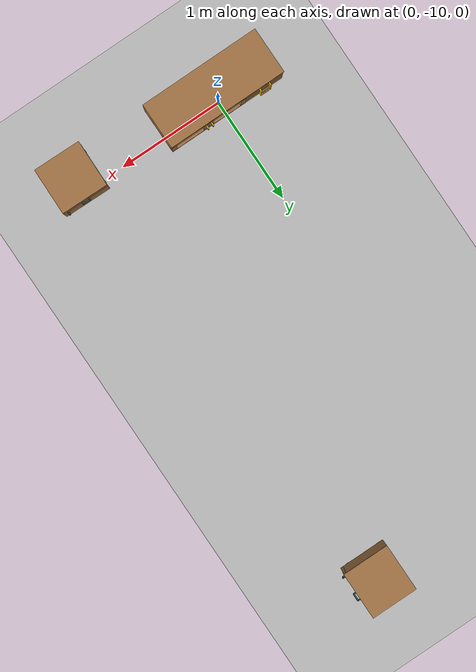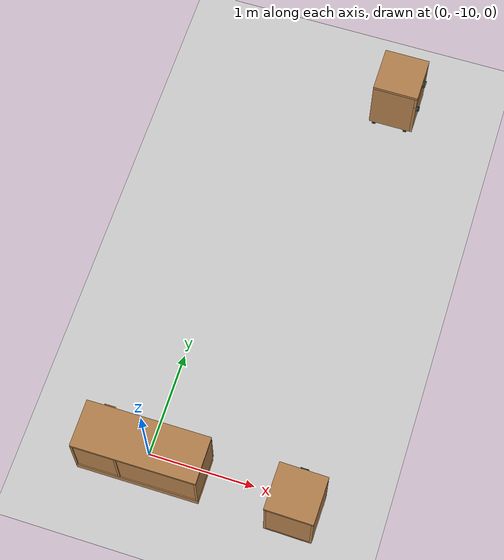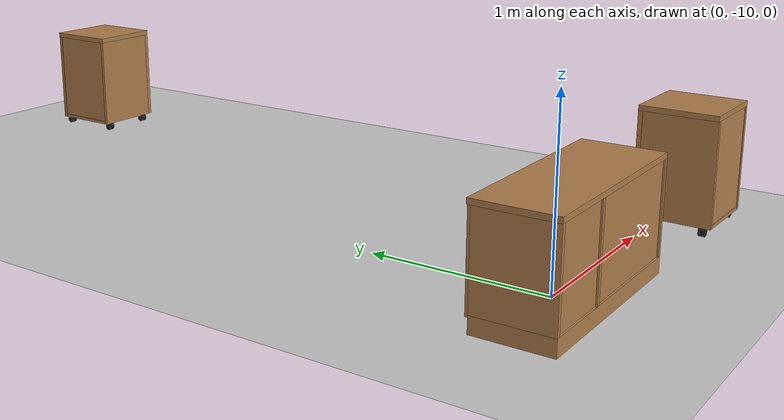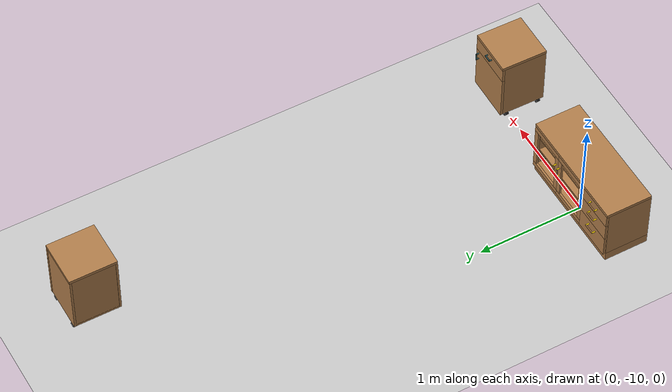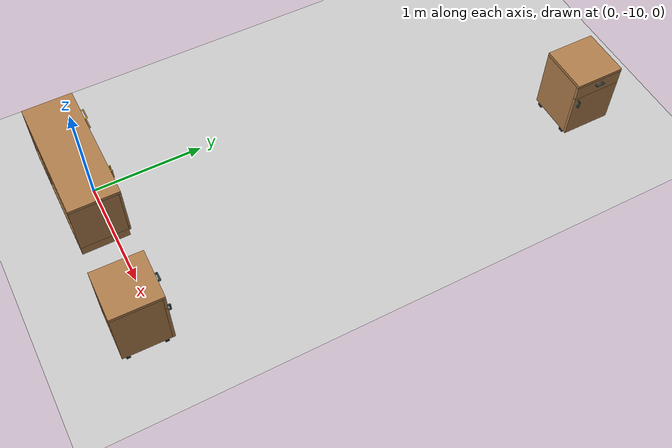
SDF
<sdf version="1.6">
 <world name="default">
  <model name="ground_plane">
   <static>1</static>
   <link name="link">
    <collision name="collision">
     <geometry><plane><normal>0 0 1</normal><size>100 100</size></plane></geometry>
     <surface><friction><ode><mu>100</mu><mu2>50</mu2></ode></friction></surface>
    </collision>
    <visual name="visual">
     <cast_shadows>0</cast_shadows>
     <geometry><plane><normal>0 0 1</normal><size>100 100</size></plane></geometry>
     <material>
      <script><uri>file://media/materials/scripts/gazebo.material</uri><name>Gazebo/Grey</name></script>
     </material>
    </visual>
   </link>
  </model>
  <model name="living_sideboard">
   <link name="link">
    <inertial>
     <mass>10</mass>
     <inertia><ixx>1</ixx><ixy>0</ixy><ixz>0</ixz><iyy>1</iyy><iyz>0</iyz><izz>1</izz></inertia>
    </inertial>
    <visual name="left_board">
     <pose>-0.23 0.01 0.3375 0 -0 0</pose>
     <geometry><box><size>0.42 0.02 0.495</size></box></geometry>
     <material>
      <script><uri>model://base_materials/wood/scripts/wood.material</uri><name>base_materials/wood</name></script>
     </material>
    </visual>
    <collision name="collision_left_board">
     <pose>-0.23 0.01 0.3375 0 -0 0</pose>
     <geometry><box><size>0.42 0.02 0.495</size></box></geometry>
    </collision>
    <visual name="back_board">
     <pose>-0.42 0.575 0.2925 0 -0 0</pose>
     <geometry><box><size>0.02 1.11 0.585</size></box></geometry>
     <material>
      <script><uri>model://base_materials/wood/scripts/wood.material</uri><name>base_materials/wood</name></script>
     </material>
    </visual>
    <collision name="collision_back_board">
     <pose>-0.42 0.575 0.2925 0 -0 0</pose>
     <geometry><box><size>0.02 1.11 0.585</size></box></geometry>
    </collision>
    <visual name="right_board">
     <pose>-0.23 1.14 0.3375 0 -0 0</pose>
     <geometry><box><size>0.42 0.02 0.495</size></box></geometry>
     <material>
      <script><uri>model://base_materials/wood/scripts/wood.material</uri><name>base_materials/wood</name></script>
     </material>
    </visual>
    <collision name="collision_right_board">
     <pose>-0.23 1.14 0.3375 0 -0 0</pose>
     <geometry><box><size>0.42 0.02 0.495</size></box></geometry>
    </collision>
    <visual name="center_vertical_board1">
     <pose>-0.23 0.74 0.3375 0 -0 0</pose>
     <geometry><box><size>0.42 0.02 0.495</size></box></geometry>
     <material>
      <script><uri>model://base_materials/wood/scripts/wood.material</uri><name>base_materials/wood</name></script>
     </material>
    </visual>
    <collision name="collision_center_vertical_board1">
     <pose>-0.23 0.74 0.3375 0 -0 0</pose>
     <geometry><box><size>0.42 0.02 0.495</size></box></geometry>
    </collision>
    <visual name="top_board">
     <pose>-0.22 0.575 0.6 0 -0 0</pose>
     <geometry><box><size>0.44 1.15 0.03</size></box></geometry>
     <material>
      <script><uri>model://base_materials/wood/scripts/wood.material</uri><name>base_materials/wood</name></script>
     </material>
    </visual>
    <collision name="collision_top_board">
     <pose>-0.22 0.575 0.6 0 -0 0</pose>
     <geometry><box><size>0.44 1.15 0.03</size></box></geometry>
    </collision>
    <visual name="bottom_board">
     <pose>-0.23 0.575 0.045 0 -0 0</pose>
     <geometry><box><size>0.42 1.15 0.09</size></box></geometry>
     <material>
      <script><uri>model://base_materials/wood/scripts/wood.material</uri><name>base_materials/wood</name></script>
     </material>
    </visual>
    <collision name="collision_bottom_board">
     <pose>-0.23 0.575 0.045 0 -0 0</pose>
     <geometry><box><size>0.42 1.15 0.09</size></box></geometry>
    </collision>
    <visual name="1st_shelf">
     <pose>-0.225 0.37 0.259 0 -0 0</pose>
     <geometry><box><size>0.36 0.72 0.018</size></box></geometry>
     <material>
      <script><uri>model://base_materials/wood/scripts/wood.material</uri><name>base_materials/wood</name></script>
     </material>
    </visual>
    <collision name="collision_1st_shelf">
     <pose>-0.225 0.37 0.259 0 -0 0</pose>
     <geometry><box><size>0.36 0.72 0.018</size></box></geometry>
    </collision>
    <visual name="2nd_shelf">
     <pose>-0.225 0.37 0.407 0 -0 0</pose>
     <geometry><box><size>0.36 0.72 0.018</size></box></geometry>
     <material>
      <script><uri>model://base_materials/wood/scripts/wood.material</uri><name>base_materials/wood</name></script>
     </material>
    </visual>
    <collision name="collision_2nd_shelf">
     <pose>-0.225 0.37 0.407 0 -0 0</pose>
     <geometry><box><size>0.36 0.72 0.018</size></box></geometry>
    </collision>
    <visual name="1st_drawer">
     <pose>-0.2025 0.95 0.52 0 -0 0</pose>
     <geometry><box><size>0.405 0.38 0.13</size></box></geometry>
     <material>
      <script><uri>model://base_materials/wood/scripts/wood.material</uri><name>base_materials/wood</name></script>
     </material>
    </visual>
    <collision name="collision_1st_drawer">
     <pose>-0.2025 0.95 0.52 0 -0 0</pose>
     <geometry><box><size>0.405 0.38 0.13</size></box></geometry>
    </collision>
    <visual name="1st_drawer_handle_l1">
     <pose>0.015 0.9015 0.535 3.14159 1.57079 3.14159</pose>
     <geometry><cylinder><radius>0.006</radius><length>0.03</length></cylinder></geometry>
     <material>
      <ambient>1 0.84314 0 1</ambient>
      <diffuse>1 0.84314 0 1</diffuse>
      <specular>0.1 0.1 0.1 1</specular>
     </material>
    </visual>
    <collision name="collision_1st_drawer_handle_l1">
     <pose>0.015 0.9015 0.535 3.14159 1.57079 3.14159</pose>
     <geometry><cylinder><radius>0.006</radius><length>0.03</length></cylinder></geometry>
    </collision>
    <visual name="1st_drawer_handle_l2">
     <pose>0.03 0.9015 0.535 0 -0 0</pose>
     <geometry><sphere><radius>0.006</radius></sphere></geometry>
     <material>
      <ambient>1 0.84314 0 1</ambient>
      <diffuse>1 0.84314 0 1</diffuse>
      <specular>0.1 0.1 0.1 1</specular>
     </material>
    </visual>
    <collision name="collision_1st_drawer_handle_l2">
     <pose>0.03 0.9015 0.535 0 -0 0</pose>
     <geometry><sphere><radius>0.006</radius></sphere></geometry>
    </collision>
    <visual name="1st_drawer_handle_r1">
     <pose>0.015 0.9985 0.535 3.14159 1.57079 3.14159</pose>
     <geometry><cylinder><radius>0.006</radius><length>0.03</length></cylinder></geometry>
     <material>
      <ambient>1 0.84314 0 1</ambient>
      <diffuse>1 0.84314 0 1</diffuse>
      <specular>0.1 0.1 0.1 1</specular>
     </material>
    </visual>
    <collision name="collision_1st_drawer_handle_r1">
     <pose>0.015 0.9985 0.535 3.14159 1.57079 3.14159</pose>
     <geometry><cylinder><radius>0.006</radius><length>0.03</length></cylinder></geometry>
    </collision>
    <visual name="1st_drawer_handle_r2">
     <pose>0.03 0.9985 0.535 0 -0 0</pose>
     <geometry><sphere><radius>0.006</radius></sphere></geometry>
     <material>
      <ambient>1 0.84314 0 1</ambient>
      <diffuse>1 0.84314 0 1</diffuse>
      <specular>0.1 0.1 0.1 1</specular>
     </material>
    </visual>
    <collision name="collision_1st_drawer_handle_r2">
     <pose>0.03 0.9985 0.535 0 -0 0</pose>
     <geometry><sphere><radius>0.006</radius></sphere></geometry>
    </collision>
    <visual name="1st_drawer_handle_center">
     <pose>0.03 0.95 0.535 1.5708 -0 0</pose>
     <geometry><cylinder><radius>0.006</radius><length>0.097</length></cylinder></geometry>
     <material>
      <script><uri>model://base_materials/wood/scripts/wood.material</uri><name>base_materials/wood</name></script>
     </material>
    </visual>
    <collision name="collision_1st_drawer_handle_center">
     <pose>0.03 0.95 0.535 1.5708 -0 0</pose>
     <geometry><cylinder><radius>0.006</radius><length>0.097</length></cylinder></geometry>
    </collision>
    <visual name="2nd_drawer">
     <pose>-0.2025 0.95 0.37 0 -0 0</pose>
     <geometry><box><size>0.405 0.38 0.17</size></box></geometry>
     <material>
      <script><uri>model://base_materials/wood/scripts/wood.material</uri><name>base_materials/wood</name></script>
     </material>
    </visual>
    <collision name="collision_2nd_drawer">
     <pose>-0.2025 0.95 0.37 0 -0 0</pose>
     <geometry><box><size>0.405 0.38 0.17</size></box></geometry>
    </collision>
    <visual name="2nd_drawer_handle_l1">
     <pose>0.015 0.9015 0.405 3.14159 1.57079 3.14159</pose>
     <geometry><cylinder><radius>0.006</radius><length>0.03</length></cylinder></geometry>
     <material>
      <ambient>1 0.84314 0 1</ambient>
      <diffuse>1 0.84314 0 1</diffuse>
      <specular>0.1 0.1 0.1 1</specular>
     </material>
    </visual>
    <collision name="collision_2nd_drawer_handle_l1">
     <pose>0.015 0.9015 0.405 3.14159 1.57079 3.14159</pose>
     <geometry><cylinder><radius>0.006</radius><length>0.03</length></cylinder></geometry>
    </collision>
    <visual name="2nd_drawer_handle_l2">
     <pose>0.03 0.9015 0.405 0 -0 0</pose>
     <geometry><sphere><radius>0.006</radius></sphere></geometry>
     <material>
      <ambient>1 0.84314 0 1</ambient>
      <diffuse>1 0.84314 0 1</diffuse>
      <specular>0.1 0.1 0.1 1</specular>
     </material>
    </visual>
    <collision name="collision_2nd_drawer_handle_l2">
     <pose>0.03 0.9015 0.405 0 -0 0</pose>
     <geometry><sphere><radius>0.006</radius></sphere></geometry>
    </collision>
    <visual name="2nd_drawer_handle_r1">
     <pose>0.015 0.9985 0.405 3.14159 1.57079 3.14159</pose>
     <geometry><cylinder><radius>0.006</radius><length>0.03</length></cylinder></geometry>
     <material>
      <ambient>1 0.84314 0 1</ambient>
      <diffuse>1 0.84314 0 1</diffuse>
      <specular>0.1 0.1 0.1 1</specular>
     </material>
    </visual>
    <collision name="collision_2nd_drawer_handle_r1">
     <pose>0.015 0.9985 0.405 3.14159 1.57079 3.14159</pose>
     <geometry><cylinder><radius>0.006</radius><length>0.03</length></cylinder></geometry>
    </collision>
    <visual name="2nd_drawer_handle_r2">
     <pose>0.03 0.9985 0.405 0 -0 0</pose>
     <geometry><sphere><radius>0.006</radius></sphere></geometry>
     <material>
      <ambient>1 0.84314 0 1</ambient>
      <diffuse>1 0.84314 0 1</diffuse>
      <specular>0.1 0.1 0.1 1</specular>
     </material>
    </visual>
    <collision name="collision_2nd_drawer_handle_r2">
     <pose>0.03 0.9985 0.405 0 -0 0</pose>
     <geometry><sphere><radius>0.006</radius></sphere></geometry>
    </collision>
    <visual name="2nd_drawer_handle_center">
     <pose>0.03 0.95 0.405 1.5708 -0 0</pose>
     <geometry><cylinder><radius>0.006</radius><length>0.097</length></cylinder></geometry>
     <material>
      <script><uri>model://base_materials/wood/scripts/wood.material</uri><name>base_materials/wood</name></script>
     </material>
    </visual>
    <collision name="collision_2nd_drawer_handle_center">
     <pose>0.03 0.95 0.405 1.5708 -0 0</pose>
     <geometry><cylinder><radius>0.006</radius><length>0.097</length></cylinder></geometry>
    </collision>
    <visual name="3rd_drawer">
     <pose>-0.2025 0.95 0.18 0 -0 0</pose>
     <geometry><box><size>0.405 0.38 0.21</size></box></geometry>
     <material>
      <script><uri>model://base_materials/wood/scripts/wood.material</uri><name>base_materials/wood</name></script>
     </material>
    </visual>
    <collision name="collision_3rd_drawer">
     <pose>-0.2025 0.95 0.18 0 -0 0</pose>
     <geometry><box><size>0.405 0.38 0.21</size></box></geometry>
    </collision>
    <visual name="3rd_drawer_handle_l1">
     <pose>0.015 0.9015 0.235 3.14159 1.57079 3.14159</pose>
     <geometry><cylinder><radius>0.006</radius><length>0.03</length></cylinder></geometry>
     <material>
      <ambient>1 0.84314 0 1</ambient>
      <diffuse>1 0.84314 0 1</diffuse>
      <specular>0.1 0.1 0.1 1</specular>
     </material>
    </visual>
    <collision name="collision_3rd_drawer_handle_l1">
     <pose>0.015 0.9015 0.235 3.14159 1.57079 3.14159</pose>
     <geometry><cylinder><radius>0.006</radius><length>0.03</length></cylinder></geometry>
    </collision>
    <visual name="3rd_drawer_handle_l2">
     <pose>0.03 0.9015 0.235 0 -0 0</pose>
     <geometry><sphere><radius>0.006</radius></sphere></geometry>
     <material>
      <ambient>1 0.84314 0 1</ambient>
      <diffuse>1 0.84314 0 1</diffuse>
      <specular>0.1 0.1 0.1 1</specular>
     </material>
    </visual>
    <collision name="collision_3rd_drawer_handle_l2">
     <pose>0.03 0.9015 0.235 0 -0 0</pose>
     <geometry><sphere><radius>0.006</radius></sphere></geometry>
    </collision>
    <visual name="3rd_drawer_handle_r1">
     <pose>0.015 0.9985 0.235 3.14159 1.57079 3.14159</pose>
     <geometry><cylinder><radius>0.006</radius><length>0.03</length></cylinder></geometry>
     <material>
      <ambient>1 0.84314 0 1</ambient>
      <diffuse>1 0.84314 0 1</diffuse>
      <specular>0.1 0.1 0.1 1</specular>
     </material>
    </visual>
    <collision name="collision_3rd_drawer_handle_r1">
     <pose>0.015 0.9985 0.235 3.14159 1.57079 3.14159</pose>
     <geometry><cylinder><radius>0.006</radius><length>0.03</length></cylinder></geometry>
    </collision>
    <visual name="3rd_drawer_handle_r2">
     <pose>0.03 0.9985 0.235 0 -0 0</pose>
     <geometry><sphere><radius>0.006</radius></sphere></geometry>
     <material>
      <ambient>1 0.84314 0 1</ambient>
      <diffuse>1 0.84314 0 1</diffuse>
      <specular>0.1 0.1 0.1 1</specular>
     </material>
    </visual>
    <collision name="collision_3rd_drawer_handle_r2">
     <pose>0.03 0.9985 0.235 0 -0 0</pose>
     <geometry><sphere><radius>0.006</radius></sphere></geometry>
    </collision>
    <visual name="3rd_drawer_handle_center">
     <pose>0.03 0.95 0.235 1.5708 -0 0</pose>
     <geometry><cylinder><radius>0.006</radius><length>0.097</length></cylinder></geometry>
     <material>
      <script><uri>model://base_materials/wood/scripts/wood.material</uri><name>base_materials/wood</name></script>
     </material>
    </visual>
    <collision name="collision_3rd_drawer_handle_center">
     <pose>0.03 0.95 0.235 1.5708 -0 0</pose>
     <geometry><cylinder><radius>0.006</radius><length>0.097</length></cylinder></geometry>
    </collision>
    <visual name="left_door_left_frame">
     <pose>-0.01 0.025 0.3275 0 -0 0</pose>
     <geometry><box><size>0.02 0.05 0.405</size></box></geometry>
     <material>
      <script><uri>model://base_materials/wood/scripts/wood.material</uri><name>base_materials/wood</name></script>
     </material>
    </visual>
    <collision name="collision_left_door_left_frame">
     <pose>-0.01 0.025 0.3275 0 -0 0</pose>
     <geometry><box><size>0.02 0.05 0.405</size></box></geometry>
    </collision>
    <visual name="left_door_right_frame">
     <pose>-0.01 0.355 0.3275 0 -0 0</pose>
     <geometry><box><size>0.02 0.05 0.405</size></box></geometry>
     <material>
      <script><uri>model://base_materials/wood/scripts/wood.material</uri><name>base_materials/wood</name></script>
     </material>
    </visual>
    <collision name="collision_left_door_right_frame">
     <pose>-0.01 0.355 0.3275 0 -0 0</pose>
     <geometry><box><size>0.02 0.05 0.405</size></box></geometry>
    </collision>
    <visual name="left_door_handle_top1">
     <pose>0.015 0.355 0.4475 3.14159 1.57079 3.14159</pose>
     <geometry><cylinder><radius>0.006</radius><length>0.03</length></cylinder></geometry>
     <material>
      <ambient>1 0.84314 0 1</ambient>
      <diffuse>1 0.84314 0 1</diffuse>
      <specular>0.1 0.1 0.1 1</specular>
     </material>
    </visual>
    <collision name="collision_left_door_handle_top1">
     <pose>0.015 0.355 0.4475 3.14159 1.57079 3.14159</pose>
     <geometry><cylinder><radius>0.006</radius><length>0.03</length></cylinder></geometry>
    </collision>
    <visual name="left_door_handle_top2">
     <pose>0.03 0.355 0.4475 0 -0 0</pose>
     <geometry><sphere><radius>0.006</radius></sphere></geometry>
     <material>
      <ambient>1 0.84314 0 1</ambient>
      <diffuse>1 0.84314 0 1</diffuse>
      <specular>0.1 0.1 0.1 1</specular>
     </material>
    </visual>
    <collision name="collision_left_door_handle_top2">
     <pose>0.03 0.355 0.4475 0 -0 0</pose>
     <geometry><sphere><radius>0.006</radius></sphere></geometry>
    </collision>
    <visual name="left_door_handle_bottom1">
     <pose>0.015 0.355 0.3505 3.14159 1.57079 3.14159</pose>
     <geometry><cylinder><radius>0.006</radius><length>0.03</length></cylinder></geometry>
     <material>
      <ambient>1 0.84314 0 1</ambient>
      <diffuse>1 0.84314 0 1</diffuse>
      <specular>0.1 0.1 0.1 1</specular>
     </material>
    </visual>
    <collision name="collision_left_door_handle_bottom1">
     <pose>0.015 0.355 0.3505 3.14159 1.57079 3.14159</pose>
     <geometry><cylinder><radius>0.006</radius><length>0.03</length></cylinder></geometry>
    </collision>
    <visual name="left_door_handle_bottom2">
     <pose>0.03 0.355 0.3505 0 -0 0</pose>
     <geometry><sphere><radius>0.006</radius></sphere></geometry>
     <material>
      <ambient>1 0.84314 0 1</ambient>
      <diffuse>1 0.84314 0 1</diffuse>
      <specular>0.1 0.1 0.1 1</specular>
     </material>
    </visual>
    <collision name="collision_left_door_handle_bottom2">
     <pose>0.03 0.355 0.3505 0 -0 0</pose>
     <geometry><sphere><radius>0.006</radius></sphere></geometry>
    </collision>
    <visual name="left_door_handle_center">
     <pose>0.03 0.355 0.399 0 -0 0</pose>
     <geometry><cylinder><radius>0.006</radius><length>0.097</length></cylinder></geometry>
     <material>
      <script><uri>model://base_materials/wood/scripts/wood.material</uri><name>base_materials/wood</name></script>
     </material>
    </visual>
    <collision name="collision_left_door_handle_center">
     <pose>0.03 0.355 0.399 0 -0 0</pose>
     <geometry><cylinder><radius>0.006</radius><length>0.097</length></cylinder></geometry>
    </collision>
    <visual name="left_door_top_frame">
     <pose>-0.01 0.19 0.5575 0 -0 0</pose>
     <geometry><box><size>0.02 0.38 0.055</size></box></geometry>
     <material>
      <script><uri>model://base_materials/wood/scripts/wood.material</uri><name>base_materials/wood</name></script>
     </material>
    </visual>
    <collision name="collision_left_door_top_frame">
     <pose>-0.01 0.19 0.5575 0 -0 0</pose>
     <geometry><box><size>0.02 0.38 0.055</size></box></geometry>
    </collision>
    <visual name="left_door_bottom_frame">
     <pose>-0.01 0.19 0.1 0 -0 0</pose>
     <geometry><box><size>0.02 0.38 0.05</size></box></geometry>
     <material>
      <script><uri>model://base_materials/wood/scripts/wood.material</uri><name>base_materials/wood</name></script>
     </material>
    </visual>
    <collision name="collision_left_door_bottom_frame">
     <pose>-0.01 0.19 0.1 0 -0 0</pose>
     <geometry><box><size>0.02 0.38 0.05</size></box></geometry>
    </collision>
    <visual name="right_door_left_frame">
     <pose>-0.01 0.405 0.3275 0 -0 0</pose>
     <geometry><box><size>0.02 0.05 0.405</size></box></geometry>
     <material>
      <script><uri>model://base_materials/wood/scripts/wood.material</uri><name>base_materials/wood</name></script>
     </material>
    </visual>
    <collision name="collision_right_door_left_frame">
     <pose>-0.01 0.405 0.3275 0 -0 0</pose>
     <geometry><box><size>0.02 0.05 0.405</size></box></geometry>
    </collision>
    <visual name="right_door_right_frame">
     <pose>-0.01 0.735 0.3275 0 -0 0</pose>
     <geometry><box><size>0.02 0.05 0.405</size></box></geometry>
     <material>
      <script><uri>model://base_materials/wood/scripts/wood.material</uri><name>base_materials/wood</name></script>
     </material>
    </visual>
    <collision name="collision_right_door_right_frame">
     <pose>-0.01 0.735 0.3275 0 -0 0</pose>
     <geometry><box><size>0.02 0.05 0.405</size></box></geometry>
    </collision>
    <visual name="right_door_top_frame">
     <pose>-0.01 0.57 0.5575 0 -0 0</pose>
     <geometry><box><size>0.02 0.38 0.055</size></box></geometry>
     <material>
      <script><uri>model://base_materials/wood/scripts/wood.material</uri><name>base_materials/wood</name></script>
     </material>
    </visual>
    <collision name="collision_right_door_top_frame">
     <pose>-0.01 0.57 0.5575 0 -0 0</pose>
     <geometry><box><size>0.02 0.38 0.055</size></box></geometry>
    </collision>
    <visual name="right_door_bottom_frame">
     <pose>-0.01 0.57 0.1 0 -0 0</pose>
     <geometry><box><size>0.02 0.38 0.05</size></box></geometry>
     <material>
      <script><uri>model://base_materials/wood/scripts/wood.material</uri><name>base_materials/wood</name></script>
     </material>
    </visual>
    <collision name="collision_right_door_bottom_frame">
     <pose>-0.01 0.57 0.1 0 -0 0</pose>
     <geometry><box><size>0.02 0.38 0.05</size></box></geometry>
    </collision>
    <visual name="right_door_handle_top1">
     <pose>0.015 0.405 0.4475 3.14159 1.57079 3.14159</pose>
     <geometry><cylinder><radius>0.006</radius><length>0.03</length></cylinder></geometry>
     <material>
      <ambient>1 0.84314 0 1</ambient>
      <diffuse>1 0.84314 0 1</diffuse>
      <specular>0.1 0.1 0.1 1</specular>
     </material>
    </visual>
    <collision name="collision_right_door_handle_top1">
     <pose>0.015 0.405 0.4475 3.14159 1.57079 3.14159</pose>
     <geometry><cylinder><radius>0.006</radius><length>0.03</length></cylinder></geometry>
    </collision>
    <visual name="right_door_handle_top2">
     <pose>0.03 0.405 0.4475 0 -0 0</pose>
     <geometry><sphere><radius>0.006</radius></sphere></geometry>
     <material>
      <ambient>1 0.84314 0 1</ambient>
      <diffuse>1 0.84314 0 1</diffuse>
      <specular>0.1 0.1 0.1 1</specular>
     </material>
    </visual>
    <collision name="collision_right_door_handle_top2">
     <pose>0.03 0.405 0.4475 0 -0 0</pose>
     <geometry><sphere><radius>0.006</radius></sphere></geometry>
    </collision>
    <visual name="right_door_handle_bottom1">
     <pose>0.015 0.405 0.3505 3.14159 1.57079 3.14159</pose>
     <geometry><cylinder><radius>0.006</radius><length>0.03</length></cylinder></geometry>
     <material>
      <ambient>1 0.84314 0 1</ambient>
      <diffuse>1 0.84314 0 1</diffuse>
      <specular>0.1 0.1 0.1 1</specular>
     </material>
    </visual>
    <collision name="collision_right_door_handle_bottom1">
     <pose>0.015 0.405 0.3505 3.14159 1.57079 3.14159</pose>
     <geometry><cylinder><radius>0.006</radius><length>0.03</length></cylinder></geometry>
    </collision>
    <visual name="right_door_handle_bottom2">
     <pose>0.03 0.405 0.3505 0 -0 0</pose>
     <geometry><sphere><radius>0.006</radius></sphere></geometry>
     <material>
      <ambient>1 0.84314 0 1</ambient>
      <diffuse>1 0.84314 0 1</diffuse>
      <specular>0.1 0.1 0.1 1</specular>
     </material>
    </visual>
    <collision name="collision_right_door_handle_bottom2">
     <pose>0.03 0.405 0.3505 0 -0 0</pose>
     <geometry><sphere><radius>0.006</radius></sphere></geometry>
    </collision>
    <visual name="right_door_handle_center">
     <pose>0.03 0.405 0.399 0 -0 0</pose>
     <geometry><cylinder><radius>0.006</radius><length>0.097</length></cylinder></geometry>
     <material>
      <script><uri>model://base_materials/wood/scripts/wood.material</uri><name>base_materials/wood</name></script>
     </material>
    </visual>
    <collision name="collision_right_door_handle_center">
     <pose>0.03 0.4 0.399 0 -0 0</pose>
     <geometry><cylinder><radius>0.006</radius><length>0.097</length></cylinder></geometry>
    </collision>
    <velocity_decay><linear>0</linear><angular>0</angular></velocity_decay>
   </link>
   <static>1</static>
   <pose>0.568188 -9.86074 0 0 -0 1.5725</pose>
  </model>
  <model name="wagon_0">
   <link name="link">
    <inertial>
     <mass>10</mass>
     <inertia><ixx>1</ixx><ixy>0</ixy><ixz>0</ixz><iyy>1</iyy><iyz>0</iyz><izz>1</izz></inertia>
    </inertial>
    <visual name="left_board">
     <pose>-0.2325 0.01 0.345 0 -0 0</pose>
     <geometry><box><size>0.415 0.02 0.59</size></box></geometry>
     <material>
      <script><uri>model://base_materials/wood/scripts/wood.material</uri><name>base_materials/wood</name></script>
     </material>
    </visual>
    <collision name="collision_left_board">
     <pose>-0.2325 0.01 0.345 0 -0 0</pose>
     <geometry><box><size>0.415 0.02 0.59</size></box></geometry>
    </collision>
    <visual name="right_board">
     <pose>-0.2325 0.4325 0.345 0 -0 0</pose>
     <geometry><box><size>0.415 0.02 0.59</size></box></geometry>
     <material>
      <script><uri>model://base_materials/wood/scripts/wood.material</uri><name>base_materials/wood</name></script>
     </material>
    </visual>
    <collision name="collision_right_board">
     <pose>-0.2325 0.4325 0.345 0 -0 0</pose>
     <geometry><box><size>0.415 0.02 0.59</size></box></geometry>
    </collision>
    <visual name="top_board">
     <pose>-0.22 0.2225 0.655 0 -0 0</pose>
     <geometry><box><size>0.44 0.445 0.03</size></box></geometry>
     <material>
      <script><uri>model://base_materials/wood/scripts/wood.material</uri><name>base_materials/wood</name></script>
     </material>
    </visual>
    <collision name="collision_top_board">
     <pose>-0.22 0.2225 0.655 0 -0 0</pose>
     <geometry><box><size>0.44 0.445 0.03</size></box></geometry>
    </collision>
    <visual name="back_board">
     <pose>-0.425 0.2225 0.345 0 -0 0</pose>
     <geometry><box><size>0.02 0.405 0.59</size></box></geometry>
     <material>
      <script><uri>model://base_materials/wood/scripts/wood.material</uri><name>base_materials/wood</name></script>
     </material>
    </visual>
    <collision name="collision_back_board">
     <pose>-0.425 0.2225 0.345 0 -0 0</pose>
     <geometry><box><size>0.02 0.405 0.59</size></box></geometry>
    </collision>
    <visual name="bottom_board">
     <pose>-0.2325 0.2225 0.06 0 -0 0</pose>
     <geometry><box><size>0.415 0.405 0.02</size></box></geometry>
     <material>
      <script><uri>model://base_materials/wood/scripts/wood.material</uri><name>base_materials/wood</name></script>
     </material>
    </visual>
    <collision name="collision_bottom_board">
     <pose>-0.2325 0.2225 0.06 0 -0 0</pose>
     <geometry><box><size>0.415 0.405 0.02</size></box></geometry>
    </collision>
    <visual name="1st_drawer">
     <pose>-0.0125 0.2225 0.57 0 -0 0</pose>
     <geometry><box><size>0.025 0.445 0.14</size></box></geometry>
     <material>
      <script><uri>model://base_materials/wood/scripts/wood.material</uri><name>base_materials/wood</name></script>
     </material>
    </visual>
    <collision name="collision_1st_drawer">
     <pose>-0.0125 0.2225 0.57 0 -0 0</pose>
     <geometry><box><size>0.025 0.445 0.14</size></box></geometry>
    </collision>
    <visual name="1st_drawer_handle_l1">
     <pose>0.0115 0.1895 0.6 3.14159 1.57079 3.14159</pose>
     <geometry><cylinder><radius>0.007</radius><length>0.023</length></cylinder></geometry>
     <material>
      <ambient>0.18431 0.3098 0.3098 1</ambient>
      <diffuse>0.18431 0.3098 0.3098 1</diffuse>
      <specular>0.1 0.1 0.1 1</specular>
     </material>
    </visual>
    <collision name="collision_1st_drawer_handle_l1">
     <pose>0.0115 0.1895 0.6 3.14159 1.57079 3.14159</pose>
     <geometry><cylinder><radius>0.007</radius><length>0.023</length></cylinder></geometry>
    </collision>
    <visual name="1st_drawer_handle_l2">
     <pose>0.023 0.1895 0.6 0 -0 0</pose>
     <geometry><sphere><radius>0.007</radius></sphere></geometry>
     <material>
      <ambient>0.18431 0.3098 0.3098 1</ambient>
      <diffuse>0.18431 0.3098 0.3098 1</diffuse>
      <specular>0.1 0.1 0.1 1</specular>
     </material>
    </visual>
    <collision name="collision_1st_drawer_handle_l2">
     <pose>0.023 0.1895 0.6 0 -0 0</pose>
     <geometry><sphere><radius>0.007</radius></sphere></geometry>
    </collision>
    <visual name="1st_drawer_handle_r1">
     <pose>0.0115 0.2555 0.6 3.14159 1.57079 3.14159</pose>
     <geometry><cylinder><radius>0.007</radius><length>0.023</length></cylinder></geometry>
     <material>
      <ambient>0.18431 0.3098 0.3098 1</ambient>
      <diffuse>0.18431 0.3098 0.3098 1</diffuse>
      <specular>0.1 0.1 0.1 1</specular>
     </material>
    </visual>
    <collision name="collision_1st_drawer_handle_r1">
     <pose>0.0115 0.2555 0.6 3.14159 1.57079 3.14159</pose>
     <geometry><cylinder><radius>0.007</radius><length>0.023</length></cylinder></geometry>
    </collision>
    <visual name="1st_drawer_handle_r2">
     <pose>0.023 0.2555 0.6 0 -0 0</pose>
     <geometry><sphere><radius>0.007</radius></sphere></geometry>
     <material>
      <ambient>0.18431 0.3098 0.3098 1</ambient>
      <diffuse>0.18431 0.3098 0.3098 1</diffuse>
      <specular>0.1 0.1 0.1 1</specular>
     </material>
    </visual>
    <collision name="collision_1st_drawer_handle_r2">
     <pose>0.023 0.2555 0.6 0 -0 0</pose>
     <geometry><sphere><radius>0.007</radius></sphere></geometry>
    </collision>
    <visual name="1st_drawer_handle_center">
     <pose>0.023 0.2225 0.6 1.5708 -0 0</pose>
     <geometry><cylinder><radius>0.007</radius><length>0.066</length></cylinder></geometry>
     <material>
      <ambient>0.18431 0.3098 0.3098 1</ambient>
      <diffuse>0.18431 0.3098 0.3098 1</diffuse>
      <specular>0.1 0.1 0.1 1</specular>
     </material>
    </visual>
    <collision name="collision_1st_drawer_handle_center">
     <pose>0.023 0.2225 0.6 1.5708 -0 0</pose>
     <geometry><cylinder><radius>0.007</radius><length>0.066</length></cylinder></geometry>
    </collision>
    <visual name="2nd_drawer">
     <pose>-0.0125 0.2225 0.275 0 -0 0</pose>
     <geometry><box><size>0.025 0.445 0.45</size></box></geometry>
     <material>
      <script><uri>model://base_materials/wood/scripts/wood.material</uri><name>base_materials/wood</name></script>
     </material>
    </visual>
    <collision name="collision_2nd_drawer">
     <pose>-0.0125 0.2225 0.275 0 -0 0</pose>
     <geometry><box><size>0.025 0.445 0.45</size></box></geometry>
    </collision>
    <visual name="2nd_drawer_handle_top1">
     <pose>0.0115 0.04 0.47 3.14159 1.57079 3.14159</pose>
     <geometry><cylinder><radius>0.007</radius><length>0.023</length></cylinder></geometry>
     <material>
      <ambient>0.18431 0.3098 0.3098 1</ambient>
      <diffuse>0.18431 0.3098 0.3098 1</diffuse>
      <specular>0.1 0.1 0.1 1</specular>
     </material>
    </visual>
    <collision name="collision_2nd_drawer_handle_top1">
     <pose>0.0115 0.04 0.47 3.14159 1.57079 3.14159</pose>
     <geometry><cylinder><radius>0.007</radius><length>0.023</length></cylinder></geometry>
    </collision>
    <visual name="2nd_drawer_handle_top2">
     <pose>0.023 0.04 0.47 0 -0 0</pose>
     <geometry><sphere><radius>0.007</radius></sphere></geometry>
     <material>
      <ambient>0.18431 0.3098 0.3098 1</ambient>
      <diffuse>0.18431 0.3098 0.3098 1</diffuse>
      <specular>0.1 0.1 0.1 1</specular>
     </material>
    </visual>
    <collision name="2nd_drawer_handle_top2">
     <pose>0.023 0.04 0.47 0 -0 0</pose>
     <geometry><sphere><radius>0.007</radius></sphere></geometry>
    </collision>
    <visual name="2nd_drawer_handle_bottom1">
     <pose>0.0115 0.04 0.404 3.14159 1.57079 3.14159</pose>
     <geometry><cylinder><radius>0.007</radius><length>0.023</length></cylinder></geometry>
     <material>
      <ambient>0.18431 0.3098 0.3098 1</ambient>
      <diffuse>0.18431 0.3098 0.3098 1</diffuse>
      <specular>0.1 0.1 0.1 1</specular>
     </material>
    </visual>
    <collision name="collision_2nd_drawer_handle_bottom1">
     <pose>0.0115 0.04 0.404 3.14159 1.57079 3.14159</pose>
     <geometry><cylinder><radius>0.007</radius><length>0.023</length></cylinder></geometry>
    </collision>
    <visual name="2nd_drawer_handle_bottom2">
     <pose>0.023 0.04 0.404 0 -0 0</pose>
     <geometry><sphere><radius>0.007</radius></sphere></geometry>
     <material>
      <ambient>0.18431 0.3098 0.3098 1</ambient>
      <diffuse>0.18431 0.3098 0.3098 1</diffuse>
      <specular>0.1 0.1 0.1 1</specular>
     </material>
    </visual>
    <collision name="2nd_drawer_handle_bottom2">
     <pose>0.023 0.04 0.404 0 -0 0</pose>
     <geometry><sphere><radius>0.007</radius></sphere></geometry>
    </collision>
    <visual name="2nd_drawer_handle_center">
     <pose>0.023 0.04 0.437 0 -0 0</pose>
     <geometry><cylinder><radius>0.007</radius><length>0.066</length></cylinder></geometry>
     <material>
      <ambient>0.18431 0.3098 0.3098 1</ambient>
      <diffuse>0.18431 0.3098 0.3098 1</diffuse>
      <specular>0.1 0.1 0.1 1</specular>
     </material>
    </visual>
    <collision name="collision_2nd_drawer_handle_center">
     <pose>0.023 0.04 0.437 0 -0 0</pose>
     <geometry><cylinder><radius>0.007</radius><length>0.066</length></cylinder></geometry>
    </collision>
    <visual name="left_front_caster">
     <pose>-0.07 0.025 0.025 3.14159 1.57079 3.14159</pose>
     <geometry><cylinder><radius>0.025</radius><length>0.035</length></cylinder></geometry>
     <material><script><name>Gazebo/Black</name><uri>__default__</uri></script></material>
    </visual>
    <collision name="collision_left_front_caster">
     <pose>-0.07 0.025 0.025 3.14159 1.57079 3.14159</pose>
     <geometry><cylinder><radius>0.025</radius><length>0.035</length></cylinder></geometry>
    </collision>
    <visual name="right_front_caster">
     <pose>-0.07 0.42 0.025 3.14159 1.57079 3.14159</pose>
     <geometry><cylinder><radius>0.025</radius><length>0.035</length></cylinder></geometry>
     <material><script><name>Gazebo/Black</name><uri>__default__</uri></script></material>
    </visual>
    <collision name="collision_right_front_caster">
     <pose>-0.07 0.42 0.025 3.14159 1.57079 3.14159</pose>
     <geometry><cylinder><radius>0.025</radius><length>0.035</length></cylinder></geometry>
    </collision>
    <visual name="left_back_caster">
     <pose>-0.39 0.025 0.025 3.14159 1.57079 3.14159</pose>
     <geometry><cylinder><radius>0.025</radius><length>0.035</length></cylinder></geometry>
     <material><script><name>Gazebo/Black</name><uri>__default__</uri></script></material>
    </visual>
    <collision name="collision_left_back_caster">
     <pose>-0.39 0.025 0.025 3.14159 1.57079 3.14159</pose>
     <geometry><cylinder><radius>0.025</radius><length>0.035</length></cylinder></geometry>
    </collision>
    <visual name="right_back_caster">
     <pose>-0.39 0.42 0.025 3.14159 1.57079 3.14159</pose>
     <geometry><cylinder><radius>0.025</radius><length>0.035</length></cylinder></geometry>
     <material><script><name>Gazebo/Black</name><uri>__default__</uri></script></material>
    </visual>
    <collision name="collision_right_back_caster">
     <pose>-0.39 0.42 0.025 3.14159 1.57079 3.14159</pose>
     <geometry><cylinder><radius>0.025</radius><length>0.035</length></cylinder></geometry>
    </collision>
    <velocity_decay><linear>0</linear><angular>0</angular></velocity_decay>
   </link>
   <static>1</static>
   <pose>1.64025 -9.91257 0 0 -0 1.55584</pose>
  </model>
  <model name="wagon_1">
   <link name="link">
    <inertial>
     <mass>10</mass>
     <inertia><ixx>1</ixx><ixy>0</ixy><ixz>0</ixz><iyy>1</iyy><iyz>0</iyz><izz>1</izz></inertia>
    </inertial>
    <visual name="left_board">
     <pose>-0.2325 0.01 0.345 0 -0 0</pose>
     <geometry><box><size>0.415 0.02 0.59</size></box></geometry>
     <material>
      <script><uri>model://base_materials/wood/scripts/wood.material</uri><name>base_materials/wood</name></script>
     </material>
    </visual>
    <collision name="collision_left_board">
     <pose>-0.2325 0.01 0.345 0 -0 0</pose>
     <geometry><box><size>0.415 0.02 0.59</size></box></geometry>
    </collision>
    <visual name="right_board">
     <pose>-0.2325 0.4325 0.345 0 -0 0</pose>
     <geometry><box><size>0.415 0.02 0.59</size></box></geometry>
     <material>
      <script><uri>model://base_materials/wood/scripts/wood.material</uri><name>base_materials/wood</name></script>
     </material>
    </visual>
    <collision name="collision_right_board">
     <pose>-0.2325 0.4325 0.345 0 -0 0</pose>
     <geometry><box><size>0.415 0.02 0.59</size></box></geometry>
    </collision>
    <visual name="top_board">
     <pose>-0.22 0.2225 0.655 0 -0 0</pose>
     <geometry><box><size>0.44 0.445 0.03</size></box></geometry>
     <material>
      <script><uri>model://base_materials/wood/scripts/wood.material</uri><name>base_materials/wood</name></script>
     </material>
    </visual>
    <collision name="collision_top_board">
     <pose>-0.22 0.2225 0.655 0 -0 0</pose>
     <geometry><box><size>0.44 0.445 0.03</size></box></geometry>
    </collision>
    <visual name="back_board">
     <pose>-0.425 0.2225 0.345 0 -0 0</pose>
     <geometry><box><size>0.02 0.405 0.59</size></box></geometry>
     <material>
      <script><uri>model://base_materials/wood/scripts/wood.material</uri><name>base_materials/wood</name></script>
     </material>
    </visual>
    <collision name="collision_back_board">
     <pose>-0.425 0.2225 0.345 0 -0 0</pose>
     <geometry><box><size>0.02 0.405 0.59</size></box></geometry>
    </collision>
    <visual name="bottom_board">
     <pose>-0.2325 0.2225 0.06 0 -0 0</pose>
     <geometry><box><size>0.415 0.405 0.02</size></box></geometry>
     <material>
      <script><uri>model://base_materials/wood/scripts/wood.material</uri><name>base_materials/wood</name></script>
     </material>
    </visual>
    <collision name="collision_bottom_board">
     <pose>-0.2325 0.2225 0.06 0 -0 0</pose>
     <geometry><box><size>0.415 0.405 0.02</size></box></geometry>
    </collision>
    <visual name="1st_drawer">
     <pose>-0.0125 0.2225 0.57 0 -0 0</pose>
     <geometry><box><size>0.025 0.445 0.14</size></box></geometry>
     <material>
      <script><uri>model://base_materials/wood/scripts/wood.material</uri><name>base_materials/wood</name></script>
     </material>
    </visual>
    <collision name="collision_1st_drawer">
     <pose>-0.0125 0.2225 0.57 0 -0 0</pose>
     <geometry><box><size>0.025 0.445 0.14</size></box></geometry>
    </collision>
    <visual name="1st_drawer_handle_l1">
     <pose>0.0115 0.1895 0.6 3.14159 1.57079 3.14159</pose>
     <geometry><cylinder><radius>0.007</radius><length>0.023</length></cylinder></geometry>
     <material>
      <ambient>0.18431 0.3098 0.3098 1</ambient>
      <diffuse>0.18431 0.3098 0.3098 1</diffuse>
      <specular>0.1 0.1 0.1 1</specular>
     </material>
    </visual>
    <collision name="collision_1st_drawer_handle_l1">
     <pose>0.0115 0.1895 0.6 3.14159 1.57079 3.14159</pose>
     <geometry><cylinder><radius>0.007</radius><length>0.023</length></cylinder></geometry>
    </collision>
    <visual name="1st_drawer_handle_l2">
     <pose>0.023 0.1895 0.6 0 -0 0</pose>
     <geometry><sphere><radius>0.007</radius></sphere></geometry>
     <material>
      <ambient>0.18431 0.3098 0.3098 1</ambient>
      <diffuse>0.18431 0.3098 0.3098 1</diffuse>
      <specular>0.1 0.1 0.1 1</specular>
     </material>
    </visual>
    <collision name="collision_1st_drawer_handle_l2">
     <pose>0.023 0.1895 0.6 0 -0 0</pose>
     <geometry><sphere><radius>0.007</radius></sphere></geometry>
    </collision>
    <visual name="1st_drawer_handle_r1">
     <pose>0.0115 0.2555 0.6 3.14159 1.57079 3.14159</pose>
     <geometry><cylinder><radius>0.007</radius><length>0.023</length></cylinder></geometry>
     <material>
      <ambient>0.18431 0.3098 0.3098 1</ambient>
      <diffuse>0.18431 0.3098 0.3098 1</diffuse>
      <specular>0.1 0.1 0.1 1</specular>
     </material>
    </visual>
    <collision name="collision_1st_drawer_handle_r1">
     <pose>0.0115 0.2555 0.6 3.14159 1.57079 3.14159</pose>
     <geometry><cylinder><radius>0.007</radius><length>0.023</length></cylinder></geometry>
    </collision>
    <visual name="1st_drawer_handle_r2">
     <pose>0.023 0.2555 0.6 0 -0 0</pose>
     <geometry><sphere><radius>0.007</radius></sphere></geometry>
     <material>
      <ambient>0.18431 0.3098 0.3098 1</ambient>
      <diffuse>0.18431 0.3098 0.3098 1</diffuse>
      <specular>0.1 0.1 0.1 1</specular>
     </material>
    </visual>
    <collision name="collision_1st_drawer_handle_r2">
     <pose>0.023 0.2555 0.6 0 -0 0</pose>
     <geometry><sphere><radius>0.007</radius></sphere></geometry>
    </collision>
    <visual name="1st_drawer_handle_center">
     <pose>0.023 0.2225 0.6 1.5708 -0 0</pose>
     <geometry><cylinder><radius>0.007</radius><length>0.066</length></cylinder></geometry>
     <material>
      <ambient>0.18431 0.3098 0.3098 1</ambient>
      <diffuse>0.18431 0.3098 0.3098 1</diffuse>
      <specular>0.1 0.1 0.1 1</specular>
     </material>
    </visual>
    <collision name="collision_1st_drawer_handle_center">
     <pose>0.023 0.2225 0.6 1.5708 -0 0</pose>
     <geometry><cylinder><radius>0.007</radius><length>0.066</length></cylinder></geometry>
    </collision>
    <visual name="2nd_drawer">
     <pose>-0.0125 0.2225 0.275 0 -0 0</pose>
     <geometry><box><size>0.025 0.445 0.45</size></box></geometry>
     <material>
      <script><uri>model://base_materials/wood/scripts/wood.material</uri><name>base_materials/wood</name></script>
     </material>
    </visual>
    <collision name="collision_2nd_drawer">
     <pose>-0.0125 0.2225 0.275 0 -0 0</pose>
     <geometry><box><size>0.025 0.445 0.45</size></box></geometry>
    </collision>
    <visual name="2nd_drawer_handle_top1">
     <pose>0.0115 0.04 0.47 3.14159 1.57079 3.14159</pose>
     <geometry><cylinder><radius>0.007</radius><length>0.023</length></cylinder></geometry>
     <material>
      <ambient>0.18431 0.3098 0.3098 1</ambient>
      <diffuse>0.18431 0.3098 0.3098 1</diffuse>
      <specular>0.1 0.1 0.1 1</specular>
     </material>
    </visual>
    <collision name="collision_2nd_drawer_handle_top1">
     <pose>0.0115 0.04 0.47 3.14159 1.57079 3.14159</pose>
     <geometry><cylinder><radius>0.007</radius><length>0.023</length></cylinder></geometry>
    </collision>
    <visual name="2nd_drawer_handle_top2">
     <pose>0.023 0.04 0.47 0 -0 0</pose>
     <geometry><sphere><radius>0.007</radius></sphere></geometry>
     <material>
      <ambient>0.18431 0.3098 0.3098 1</ambient>
      <diffuse>0.18431 0.3098 0.3098 1</diffuse>
      <specular>0.1 0.1 0.1 1</specular>
     </material>
    </visual>
    <collision name="2nd_drawer_handle_top2">
     <pose>0.023 0.04 0.47 0 -0 0</pose>
     <geometry><sphere><radius>0.007</radius></sphere></geometry>
    </collision>
    <visual name="2nd_drawer_handle_bottom1">
     <pose>0.0115 0.04 0.404 3.14159 1.57079 3.14159</pose>
     <geometry><cylinder><radius>0.007</radius><length>0.023</length></cylinder></geometry>
     <material>
      <ambient>0.18431 0.3098 0.3098 1</ambient>
      <diffuse>0.18431 0.3098 0.3098 1</diffuse>
      <specular>0.1 0.1 0.1 1</specular>
     </material>
    </visual>
    <collision name="collision_2nd_drawer_handle_bottom1">
     <pose>0.0115 0.04 0.404 3.14159 1.57079 3.14159</pose>
     <geometry><cylinder><radius>0.007</radius><length>0.023</length></cylinder></geometry>
    </collision>
    <visual name="2nd_drawer_handle_bottom2">
     <pose>0.023 0.04 0.404 0 -0 0</pose>
     <geometry><sphere><radius>0.007</radius></sphere></geometry>
     <material>
      <ambient>0.18431 0.3098 0.3098 1</ambient>
      <diffuse>0.18431 0.3098 0.3098 1</diffuse>
      <specular>0.1 0.1 0.1 1</specular>
     </material>
    </visual>
    <collision name="2nd_drawer_handle_bottom2">
     <pose>0.023 0.04 0.404 0 -0 0</pose>
     <geometry><sphere><radius>0.007</radius></sphere></geometry>
    </collision>
    <visual name="2nd_drawer_handle_center">
     <pose>0.023 0.04 0.437 0 -0 0</pose>
     <geometry><cylinder><radius>0.007</radius><length>0.066</length></cylinder></geometry>
     <material>
      <ambient>0.18431 0.3098 0.3098 1</ambient>
      <diffuse>0.18431 0.3098 0.3098 1</diffuse>
      <specular>0.1 0.1 0.1 1</specular>
     </material>
    </visual>
    <collision name="collision_2nd_drawer_handle_center">
     <pose>0.023 0.04 0.437 0 -0 0</pose>
     <geometry><cylinder><radius>0.007</radius><length>0.066</length></cylinder></geometry>
    </collision>
    <visual name="left_front_caster">
     <pose>-0.07 0.025 0.025 3.14159 1.57079 3.14159</pose>
     <geometry><cylinder><radius>0.025</radius><length>0.035</length></cylinder></geometry>
     <material><script><name>Gazebo/Black</name><uri>__default__</uri></script></material>
    </visual>
    <collision name="collision_left_front_caster">
     <pose>-0.07 0.025 0.025 3.14159 1.57079 3.14159</pose>
     <geometry><cylinder><radius>0.025</radius><length>0.035</length></cylinder></geometry>
    </collision>
    <visual name="right_front_caster">
     <pose>-0.07 0.42 0.025 3.14159 1.57079 3.14159</pose>
     <geometry><cylinder><radius>0.025</radius><length>0.035</length></cylinder></geometry>
     <material><script><name>Gazebo/Black</name><uri>__default__</uri></script></material>
    </visual>
    <collision name="collision_right_front_caster">
     <pose>-0.07 0.42 0.025 3.14159 1.57079 3.14159</pose>
     <geometry><cylinder><radius>0.025</radius><length>0.035</length></cylinder></geometry>
    </collision>
    <visual name="left_back_caster">
     <pose>-0.39 0.025 0.025 3.14159 1.57079 3.14159</pose>
     <geometry><cylinder><radius>0.025</radius><length>0.035</length></cylinder></geometry>
     <material><script><name>Gazebo/Black</name><uri>__default__</uri></script></material>
    </visual>
    <collision name="collision_left_back_caster">
     <pose>-0.39 0.025 0.025 3.14159 1.57079 3.14159</pose>
     <geometry><cylinder><radius>0.025</radius><length>0.035</length></cylinder></geometry>
    </collision>
    <visual name="right_back_caster">
     <pose>-0.39 0.42 0.025 3.14159 1.57079 3.14159</pose>
     <geometry><cylinder><radius>0.025</radius><length>0.035</length></cylinder></geometry>
     <material><script><name>Gazebo/Black</name><uri>__default__</uri></script></material>
    </visual>
    <collision name="collision_right_back_caster">
     <pose>-0.39 0.42 0.025 3.14159 1.57079 3.14159</pose>
     <geometry><cylinder><radius>0.025</radius><length>0.035</length></cylinder></geometry>
    </collision>
    <velocity_decay><linear>0</linear><angular>0</angular></velocity_decay>
   </link>
   <static>1</static>
   <pose>1.38508 -6.06196 0 0 -0 0</pose>
  </model>
 </world>
</sdf>
